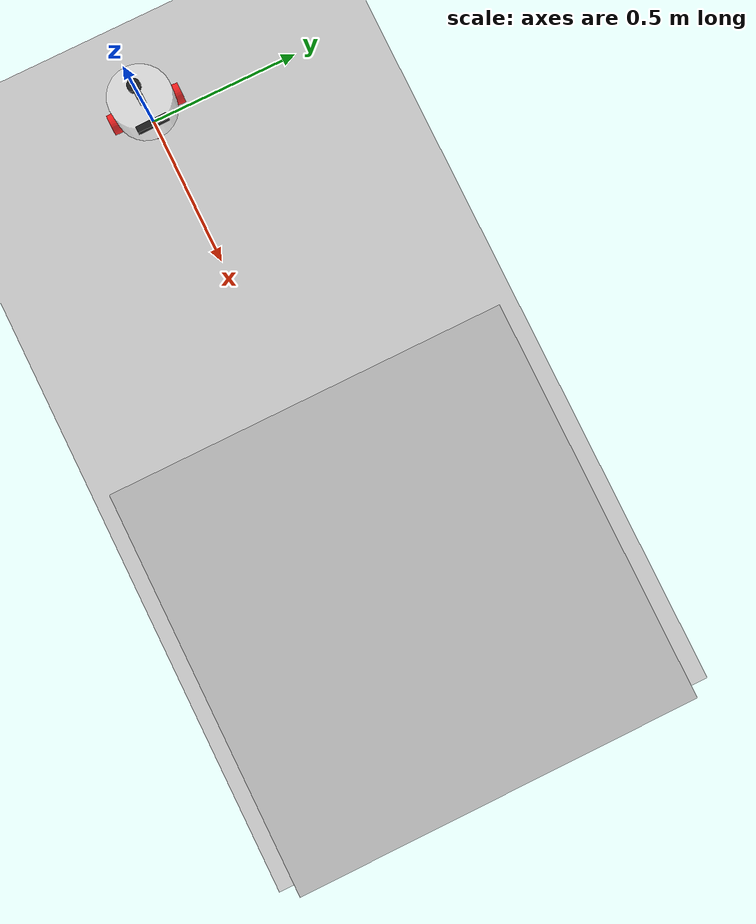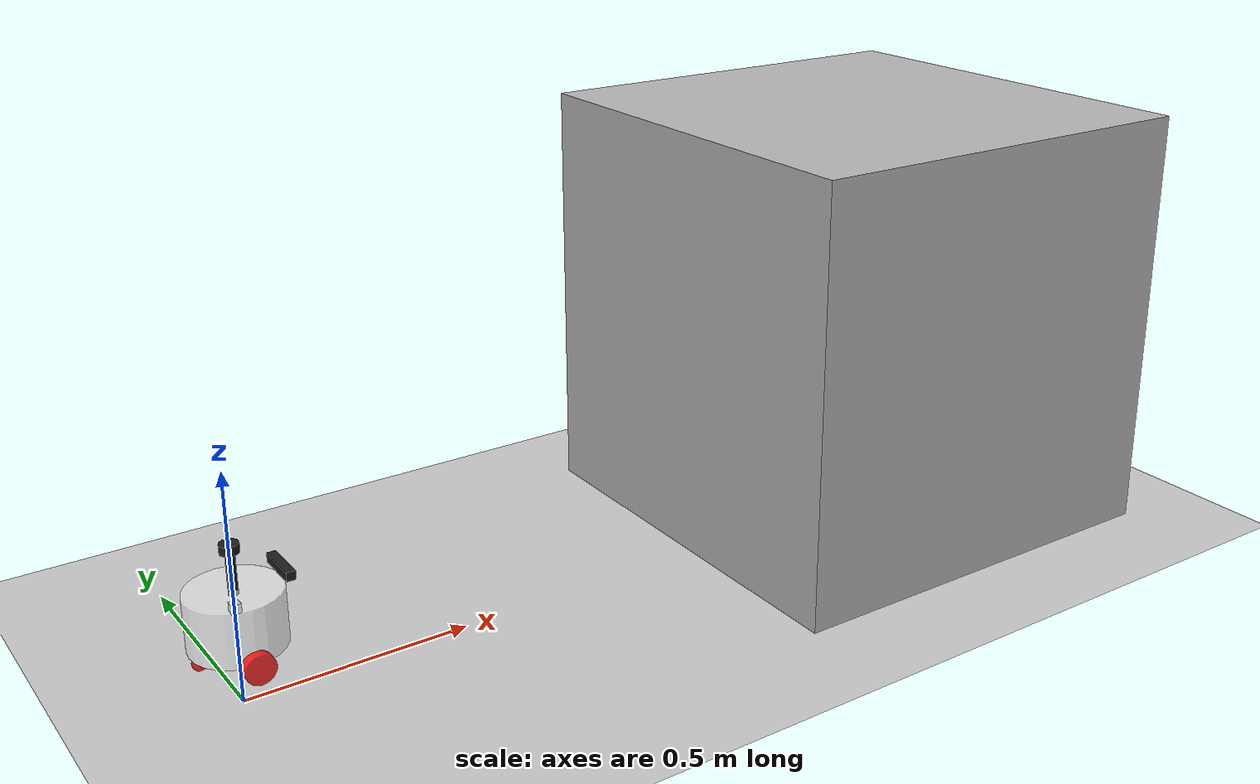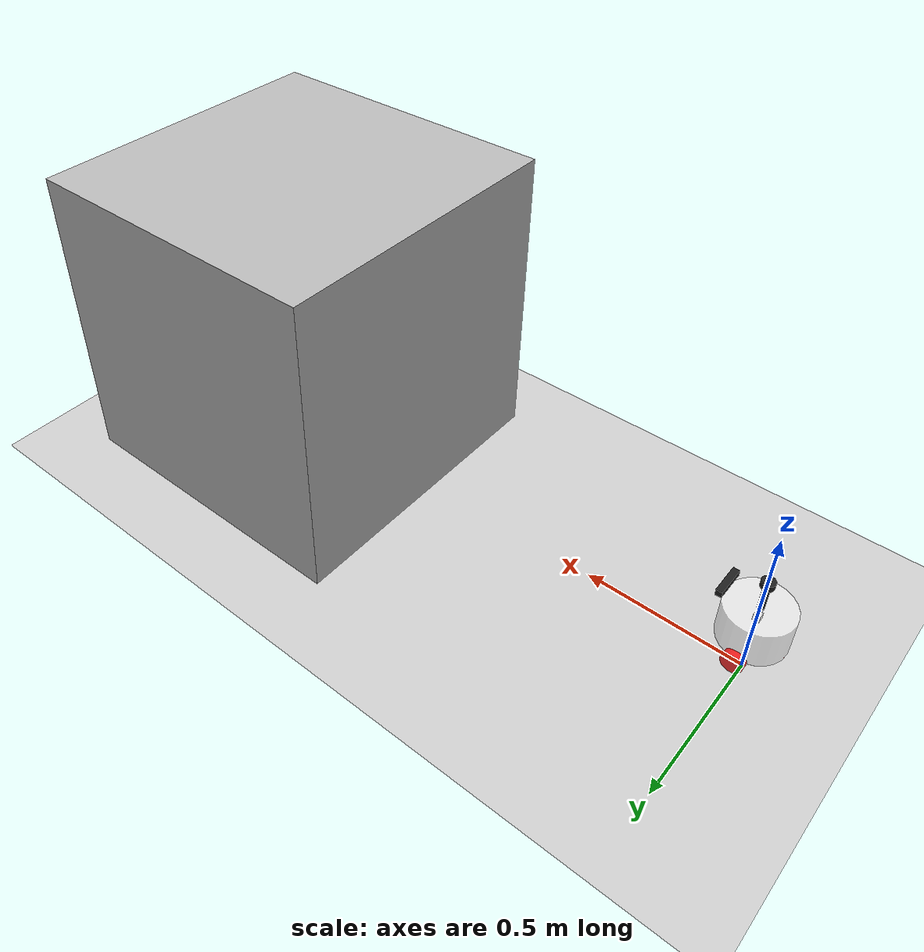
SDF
<?xml version="1.0"?>
<sdf version="1.10">
  <world name="car_world">
   <include>
        <uri>file:///home/nenlian/ros2/ros2-private/src/robot_description/urdf/robot/robot.sdf</uri>
        <pose>0 0 0.1 0 0 0</pose>
    </include>
    <physics name="1ms" type="ignored">
      <max_step_size>0.001</max_step_size>
      <real_time_factor>1</real_time_factor>
      <real_time_update_rate>1000</real_time_update_rate>
    </physics>

    <!-- 基础系统插件 -->
    <plugin name="gz::sim::systems::Physics" filename="gz-sim-physics-system"/>
    <plugin name="gz::sim::systems::UserCommands" filename="gz-sim-user-commands-system"/>
    <plugin name="gz::sim::systems::SceneBroadcaster" filename="gz-sim-scene-broadcaster-system"/>
    <plugin name="gz::sim::systems::Sensors" filename="gz-sim-sensors-system">
      <render_engine>ogre2</render_engine>
    </plugin>

    <!-- 世界物理与视觉 -->
    <gravity>0 0 -9.8</gravity>
    <magnetic_field>5.56e-06 2.28e-05 -4.24e-05</magnetic_field>
    <atmosphere type="adiabatic"/>
    <scene>
      <ambient>0.4 0.4 0.4 1</ambient>
      <background>0.7 0.7 0.7 1</background>
      <shadows>true</shadows>
    </scene>

    <!-- 地面 -->
    <model name="ground_plane">
      <static>true</static>
      <link name="link">
        <collision name="collision">
          <geometry>
            <plane>
              <normal>0 0 1</normal>
              <size>100 100</size>
            </plane>
          </geometry>
        </collision>
        <visual name="visual">
          <geometry>
            <plane>
              <normal>0 0 1</normal>
              <size>100 100</size>
            </plane>
          </geometry>
          <material>
            <ambient>0.8 0.8 0.8 1</ambient>
            <diffuse>0.8 0.8 0.8 1</diffuse>
          </material>
        </visual>
      </link>
    </model>

    <!-- 一些示例物体 -->
    <model name="box">
      <pose>1.6 0.05 0.5 0 0 0</pose>
      <link name="link">
        <collision name="collision">
          <geometry><box><size>1 1 1</size></box></geometry>
        </collision>
        <visual name="visual">
          <geometry><box><size>1 1 1</size></box></geometry>
        </visual>
      </link>
    </model>

    <!-- 光源 -->
    <light name="sun" type="directional">
      <pose>0 0 10 0 0 0</pose>
      <direction>-0.5 0.1 -0.9</direction>
      <diffuse>0.8 0.8 0.8 1</diffuse>
      <specular>0.2 0.2 0.2 1</specular>
    </light>
  </world>
</sdf>

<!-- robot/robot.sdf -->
<sdf version='1.11'>
  <model name='robot_presatation'>
    <link name='base_footprint'>
      <inertial>
        <pose>0.0072992700729927031 0 0.10618248175182481 0 0 0</pose>
        <mass>1.3700000000000001</mass>
        <inertia>
          <ixx>0.0075142943795620384</ixx>
          <ixy>0</ixy>
          <ixz>-0.00064817518248175146</ixz>
          <iyy>0.0090013016788321135</iyy>
          <iyz>0</iyz>
          <izz>0.006687747299270074</izz>
        </inertia>
      </inertial>
      <collision name='base_footprint_fixed_joint_lump__base_link_collision'>
        <pose>0 0 0.090999999999999998 0 0 0</pose>
        <geometry>
          <cylinder>
            <length>0.12</length>
            <radius>0.10000000000000001</radius>
          </cylinder>
        </geometry>
      </collision>
      <collision name='base_footprint_fixed_joint_lump__back_caster_link_collision_1'>
        <pose>-0.080000000000000002 0 0.014999999999999999 0 0 0</pose>
        <geometry>
          <sphere>
            <radius>0.016</radius>
          </sphere>
        </geometry>
        <surface>
          <contact>
            <ode>
              <kp>1000000000</kp>
              <kd>1</kd>
            </ode>
          </contact>
          <friction>
            <ode>
              <mu>0</mu>
              <mu2>0</mu2>
            </ode>
          </friction>
        </surface>
      </collision>
      <collision name='base_footprint_fixed_joint_lump__camera_link_collision_2'>
        <pose>0.10000000000000001 0 0.17100000000000001 0 0 0</pose>
        <geometry>
          <box>
            <size>0.02 0.10000000000000001 0.02</size>
          </box>
        </geometry>
        <surface>
          <contact>
            <ode/>
          </contact>
          <friction>
            <ode/>
          </friction>
        </surface>
      </collision>
      <collision name='base_footprint_fixed_joint_lump__front_caster_link_collision_3'>
        <pose>0.080000000000000002 0 0.014999999999999999 0 0 0</pose>
        <geometry>
          <sphere>
            <radius>0.016</radius>
          </sphere>
        </geometry>
        <surface>
          <contact>
            <ode>
              <kp>1000000000</kp>
              <kd>1</kd>
            </ode>
          </contact>
          <friction>
            <ode>
              <mu>0</mu>
              <mu2>0</mu2>
            </ode>
          </friction>
        </surface>
      </collision>
      <collision name='base_footprint_fixed_joint_lump__imu_link_collision_4'>
        <pose>0 0 0.111 0 0 0</pose>
        <geometry>
          <box>
            <size>0.02 0.02 0.02</size>
          </box>
        </geometry>
        <surface>
          <contact>
            <ode/>
          </contact>
          <friction>
            <ode/>
          </friction>
        </surface>
      </collision>
      <collision name='base_footprint_fixed_joint_lump__laser_cylinder_link_collision_5'>
        <pose>0 0 0.191 0 0 0</pose>
        <geometry>
          <cylinder>
            <length>0.10000000000000001</length>
            <radius>0.01</radius>
          </cylinder>
        </geometry>
        <surface>
          <contact>
            <ode/>
          </contact>
          <friction>
            <ode/>
          </friction>
        </surface>
      </collision>
      <collision name='base_footprint_fixed_joint_lump__laser_link_collision_6'>
        <pose>0 0 0.24099999999999999 0 0 0</pose>
        <geometry>
          <cylinder>
            <length>0.02</length>
            <radius>0.02</radius>
          </cylinder>
        </geometry>
        <surface>
          <contact>
            <ode/>
          </contact>
          <friction>
            <ode/>
          </friction>
        </surface>
      </collision>
      <visual name='base_footprint_fixed_joint_lump__base_link_visual'>
        <pose>0 0 0.090999999999999998 0 0 0</pose>
        <geometry>
          <cylinder>
            <length>0.12</length>
            <radius>0.10000000000000001</radius>
          </cylinder>
        </geometry>
        <material>
          <diffuse>1 1 1 0.5</diffuse>
          <ambient>1 1 1 0.5</ambient>
        </material>
      </visual>
      <visual name='base_footprint_fixed_joint_lump__back_caster_link_visual_1'>
        <pose>-0.080000000000000002 0 0.014999999999999999 0 0 0</pose>
        <geometry>
          <sphere>
            <radius>0.016</radius>
          </sphere>
        </geometry>
        <material>
          <diffuse>1 0 0 0.800000012</diffuse>
          <ambient>1 0 0 0.800000012</ambient>
        </material>
      </visual>
      <visual name='base_footprint_fixed_joint_lump__camera_link_visual_2'>
        <pose>0.10000000000000001 0 0.17100000000000001 0 0 0</pose>
        <geometry>
          <box>
            <size>0.02 0.10000000000000001 0.02</size>
          </box>
        </geometry>
        <material>
          <script>
            <name>Gazebo/Black</name>
            <uri>file://media/materials/scripts/gazebo.material</uri>
          </script>
          <diffuse>0 0 0 0.5</diffuse>
          <ambient>0 0 0 0.5</ambient>
        </material>
      </visual>
      <visual name='base_footprint_fixed_joint_lump__front_caster_link_visual_3'>
        <pose>0.080000000000000002 0 0.014999999999999999 0 0 0</pose>
        <geometry>
          <sphere>
            <radius>0.016</radius>
          </sphere>
        </geometry>
        <material>
          <diffuse>1 0 0 0.800000012</diffuse>
          <ambient>1 0 0 0.800000012</ambient>
        </material>
      </visual>
      <visual name='base_footprint_fixed_joint_lump__imu_link_visual_4'>
        <pose>0 0 0.111 0 0 0</pose>
        <geometry>
          <box>
            <size>0.02 0.02 0.02</size>
          </box>
        </geometry>
        <material>
          <script>
            <name>Gazebo/Grey</name>
            <uri>file://media/materials/scripts/gazebo.material</uri>
          </script>
          <diffuse>0.37500003 0.37500003 0.37500003 1</diffuse>
          <ambient>0.37500003 0.37500003 0.37500003 1</ambient>
        </material>
      </visual>
      <visual name='base_footprint_fixed_joint_lump__laser_cylinder_link_visual_5'>
        <pose>0 0 0.191 0 0 0</pose>
        <geometry>
          <cylinder>
            <length>0.10000000000000001</length>
            <radius>0.01</radius>
          </cylinder>
        </geometry>
        <material>
          <script>
            <name>Gazebo/Black</name>
            <uri>file://media/materials/scripts/gazebo.material</uri>
          </script>
          <diffuse>0 0 0 0.5</diffuse>
          <ambient>0 0 0 0.5</ambient>
        </material>
      </visual>
      <visual name='base_footprint_fixed_joint_lump__laser_link_visual_6'>
        <pose>0 0 0.24099999999999999 0 0 0</pose>
        <geometry>
          <cylinder>
            <length>0.02</length>
            <radius>0.02</radius>
          </cylinder>
        </geometry>
        <material>
          <script>
            <name>Gazebo/Black</name>
            <uri>file://media/materials/scripts/gazebo.material</uri>
          </script>
          <diffuse>0 0 0 0.5</diffuse>
          <ambient>0 0 0 0.5</ambient>
        </material>
      </visual>
      <sensor name='laser_sensor' type='gpu_lidar'>
        <topic>/scan</topic>
        <always_on>true</always_on>
        <update_rate>10</update_rate>
        <visualize>true</visualize>
        <lidar>
          <scan>
            <horizontal>
              <samples>640</samples>
              <resolution>1</resolution>
              <min_angle>0</min_angle>
              <max_angle>6.2800000000000002</max_angle>
            </horizontal>
            <vertical>
              <samples>1</samples>
              <resolution>0.01</resolution>
              <min_angle>0</min_angle>
              <max_angle>0</max_angle>
            </vertical>
          </scan>
          <range>
            <min>0.080000000000000002</min>
            <max>10</max>
            <resolution>0.01</resolution>
          </range>
        </lidar>
        <pose>0 0 0.24099999999999999 0 0 0</pose>
      </sensor>
    </link>
    <joint name='left_wheel_joint' type='revolute'>
      <pose relative_to='base_footprint'>0 0.10000000000000001 0.031 0 0 0</pose>
      <parent>base_footprint</parent>
      <child>left_wheel_link</child>
      <axis>
        <xyz>0 1 0</xyz>
        <limit>
          <lower>-inf</lower>
          <upper>inf</upper>
        </limit>
        <dynamics>
          <spring_reference>0</spring_reference>
          <spring_stiffness>0</spring_stiffness>
        </dynamics>
      </axis>
    </joint>
    <link name='left_wheel_link'>
      <pose relative_to='left_wheel_joint'>0 0 0 0 0 0</pose>
      <inertial>
        <pose>0 0 0 0 0 0</pose>
        <mass>0.050000000000000003</mass>
        <inertia>
          <ixx>1.9466666666666671e-05</ixx>
          <ixy>0</ixy>
          <ixz>0</ixz>
          <iyy>1.9466666666666671e-05</iyy>
          <iyz>0</iyz>
          <izz>2.5599999999999999e-05</izz>
        </inertia>
      </inertial>
      <collision name='left_wheel_link_collision'>
        <pose>0 0 0 1.5707899999999999 0 0</pose>
        <geometry>
          <cylinder>
            <length>0.040000000000000001</length>
            <radius>0.032000000000000001</radius>
          </cylinder>
        </geometry>
        <surface>
          <contact>
            <ode>
              <kp>1000000000</kp>
              <kd>1</kd>
            </ode>
          </contact>
          <friction>
            <ode>
              <mu>20</mu>
              <mu2>20</mu2>
            </ode>
          </friction>
        </surface>
      </collision>
      <visual name='left_wheel_link_visual'>
        <pose>0 0 0 1.5707899999999999 0 0</pose>
        <geometry>
          <cylinder>
            <length>0.040000000000000001</length>
            <radius>0.032000000000000001</radius>
          </cylinder>
        </geometry>
        <material>
          <diffuse>1 0 0 0.800000012</diffuse>
          <ambient>1 0 0 0.800000012</ambient>
        </material>
      </visual>
    </link>
    <joint name='right_wheel_joint' type='revolute'>
      <pose relative_to='base_footprint'>0 -0.10000000000000001 0.031 0 0 0</pose>
      <parent>base_footprint</parent>
      <child>right_wheel_link</child>
      <axis>
        <xyz>0 1 0</xyz>
        <limit>
          <lower>-inf</lower>
          <upper>inf</upper>
        </limit>
        <dynamics>
          <spring_reference>0</spring_reference>
          <spring_stiffness>0</spring_stiffness>
        </dynamics>
      </axis>
    </joint>
    <link name='right_wheel_link'>
      <pose relative_to='right_wheel_joint'>0 0 0 0 0 0</pose>
      <inertial>
        <pose>0 0 0 0 0 0</pose>
        <mass>0.050000000000000003</mass>
        <inertia>
          <ixx>1.9466666666666671e-05</ixx>
          <ixy>0</ixy>
          <ixz>0</ixz>
          <iyy>1.9466666666666671e-05</iyy>
          <iyz>0</iyz>
          <izz>2.5599999999999999e-05</izz>
        </inertia>
      </inertial>
      <collision name='right_wheel_link_collision'>
        <pose>0 0 0 1.5707899999999999 0 0</pose>
        <geometry>
          <cylinder>
            <length>0.040000000000000001</length>
            <radius>0.032000000000000001</radius>
          </cylinder>
        </geometry>
        <surface>
          <contact>
            <ode>
              <kp>1000000000</kp>
              <kd>1</kd>
            </ode>
          </contact>
          <friction>
            <ode>
              <mu>20</mu>
              <mu2>20</mu2>
            </ode>
          </friction>
        </surface>
      </collision>
      <visual name='right_wheel_link_visual'>
        <pose>0 0 0 1.5707899999999999 0 0</pose>
        <geometry>
          <cylinder>
            <length>0.040000000000000001</length>
            <radius>0.032000000000000001</radius>
          </cylinder>
        </geometry>
        <material>
          <diffuse>1 0 0 0.800000012</diffuse>
          <ambient>1 0 0 0.800000012</ambient>
        </material>
      </visual>
    </link>
    <plugin name='gz_ros2_control::GazeboSimROS2ControlPlugin' filename='libgz_ros2_control-system.so'>
      <parameters>/home/nenlian/checkout/robot_private/colcon_ws/install/robot_description/share/robot_description/config/robot_ros2_controller.yaml</parameters>
    </plugin>
    <frame name='back_caster_joint' attached_to='base_link'>
      <pose>-0.080000000000000002 0 -0.075999999999999998 0 0 0</pose>
    </frame>
    <frame name='back_caster_link' attached_to='back_caster_joint'>
      <pose>0 0 0 0 0 0</pose>
    </frame>
    <frame name='camera_joint' attached_to='base_link'>
      <pose>0.10000000000000001 0 0.080000000000000002 0 0 0</pose>
    </frame>
    <frame name='camera_link' attached_to='camera_joint'>
      <pose>0 0 0 0 0 0</pose>
    </frame>
    <frame name='front_caster_joint' attached_to='base_link'>
      <pose>0.080000000000000002 0 -0.075999999999999998 0 0 0</pose>
    </frame>
    <frame name='front_caster_link' attached_to='front_caster_joint'>
      <pose>0 0 0 0 0 0</pose>
    </frame>
    <frame name='imu_joint' attached_to='base_link'>
      <pose>0 0 0.02 0 0 0</pose>
    </frame>
    <frame name='imu_link' attached_to='imu_joint'>
      <pose>0 0 0 0 0 0</pose>
    </frame>
    <frame name='laser_joint' attached_to='laser_cylinder_link'>
      <pose>0 0 0.050000000000000003 0 0 0</pose>
    </frame>
    <frame name='laser_link' attached_to='laser_joint'>
      <pose>0 0 0 0 0 0</pose>
    </frame>
    <frame name='laser_cylinder_joint' attached_to='base_link'>
      <pose>0 0 0.10000000000000001 0 0 0</pose>
    </frame>
    <frame name='laser_cylinder_link' attached_to='laser_cylinder_joint'>
      <pose>0 0 0 0 0 0</pose>
    </frame>
    <frame name='joint_name' attached_to='base_footprint'>
      <pose>0 0 0.090999999999999998 0 0 0</pose>
    </frame>
    <frame name='base_link' attached_to='joint_name'>
      <pose>0 0 0 0 0 0</pose>
    </frame>
  </model>
</sdf>
